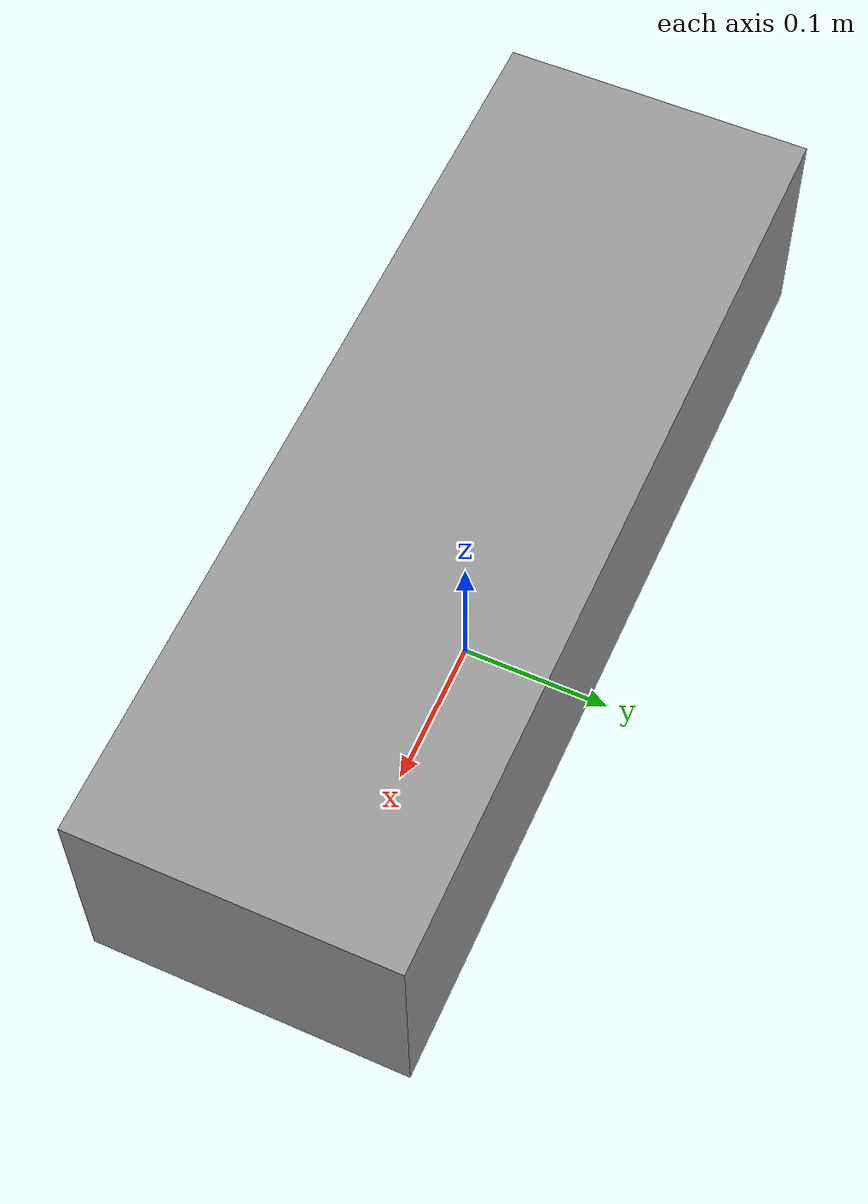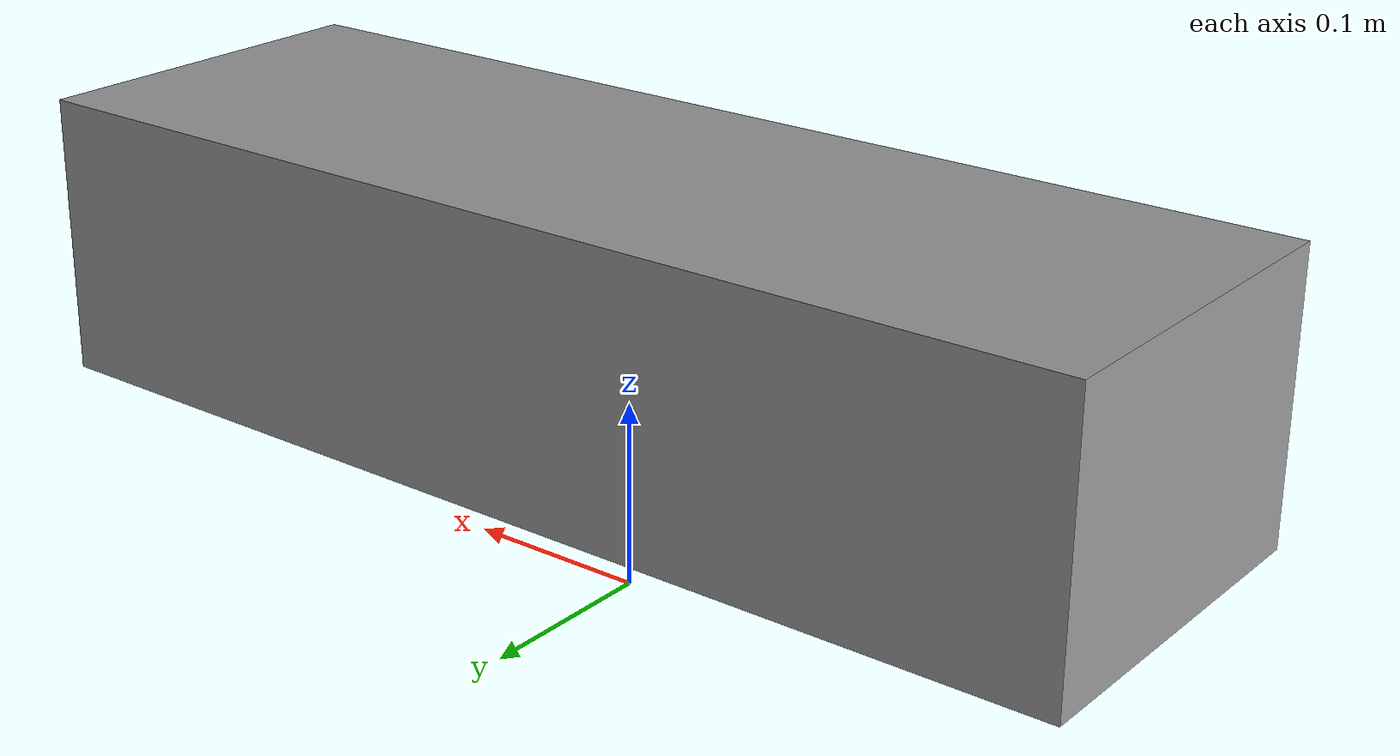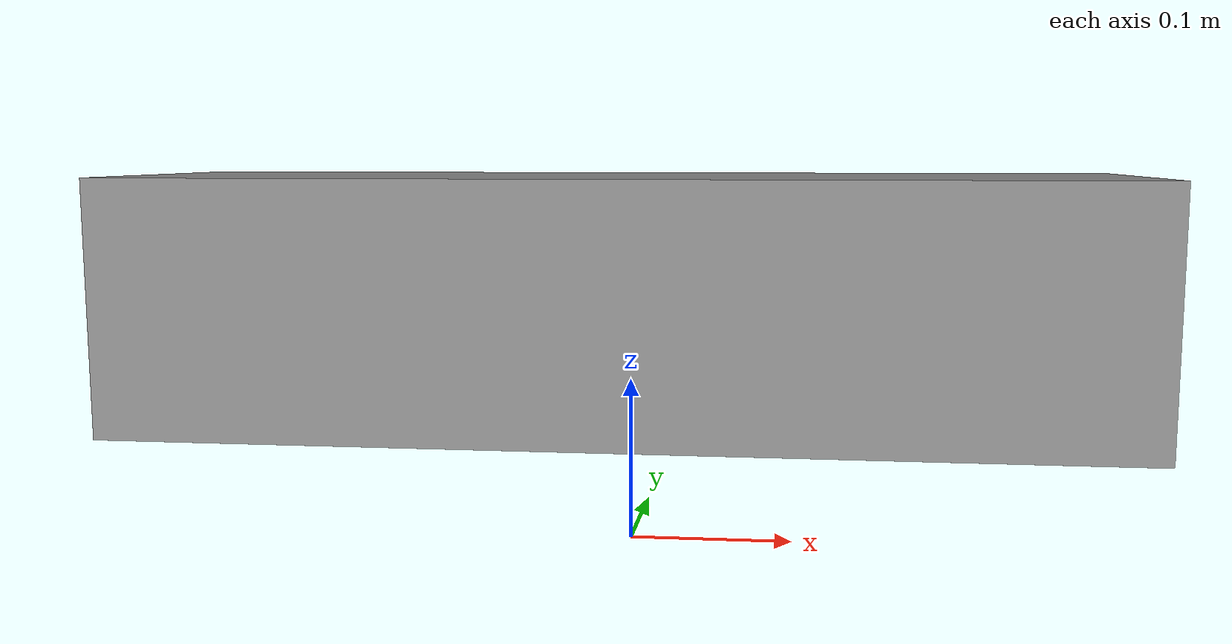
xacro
<?xml version="1.0"?>
<robot xmlns:xacro="http://www.ros.org/wiki/xacro">

    <xacro:include filename="inertia.xacro" />
    <xacro:property name="base_mass" value="0.5" />
    <xacro:property name="length" value="0.6" />
    <xacro:property name="height" value="0.15" />
    <xacro:property name="width" value="0.2" />

    <xacro:macro name="base_origin">
        <origin xyz="0 0 ${height/2}" rpy="0 0 0" />
    </xacro:macro>

    <link name="base_footprint" />

    <link name="base_link">
        <visual>
            <geometry>
                <box size="${length} ${width} ${height}" />
            </geometry>
            <xacro:base_origin />
            <material name="grey" />
        </visual>

        <collision>
            <geometry>
                <box size="${length} ${width} ${height}" />
            </geometry>
            <xacro:base_origin />
        </collision>

        <xacro:cuboid_inertia mass="${base_mass}" a="${length}" b="${height}" c="${width}">
            <xacro:base_origin />
        </xacro:cuboid_inertia>

    </link>

    <joint name="base_joint" type="fixed">
        <parent link="base_footprint" />
        <child link="base_link" />
        <xacro:base_origin />
    </joint>

</robot>

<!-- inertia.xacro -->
<robot xmlns:xacro="http://www.ros.org/wiki/xacro">

    <xacro:macro name="cuboid_inertia" params="mass a b c *origin">
        <inertial>
            <xacro:insert_block name="origin" />
            <mass value="${mass}" />
            <inertia ixx="${(1/12)*mass*(b*b+c*c) }" ixy="0.0" ixz="0.0"
                iyy="${(1/12)*mass*(a*a+b*b) }" iyz="0.0" izz="${(1/12)*mass*(a*a+c*c) }" />
        </inertial>
    </xacro:macro>

    <xacro:macro name="cylinder_inertia" params="mass radius length *origin">
        <inertial>
            <xacro:insert_block name="origin" />
            <mass value="${mass}" />
            <inertia ixx="${mass*(3*radius*radius + length*length)/12 }" ixy="0.0" ixz="0.0"
                iyy="${mass*(3*radius*radius + length*length)/12 }" iyz="0.0"
                izz="${mass*radius*radius /2 }" />
        </inertial>
    </xacro:macro>

</robot>
